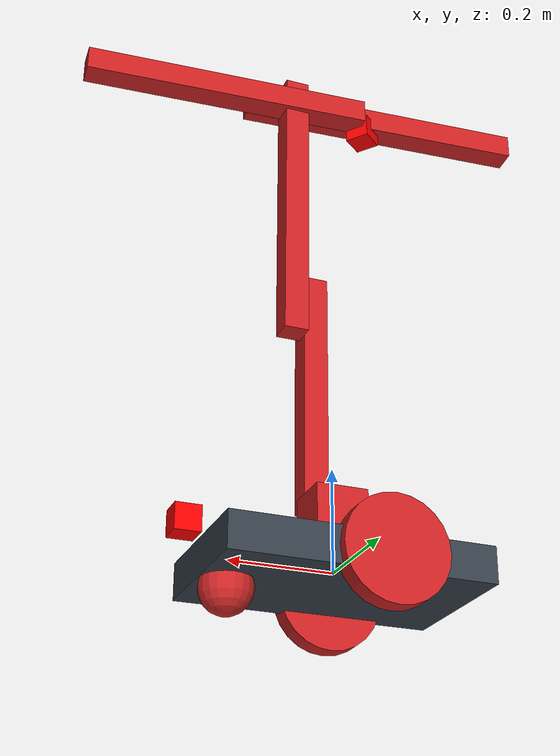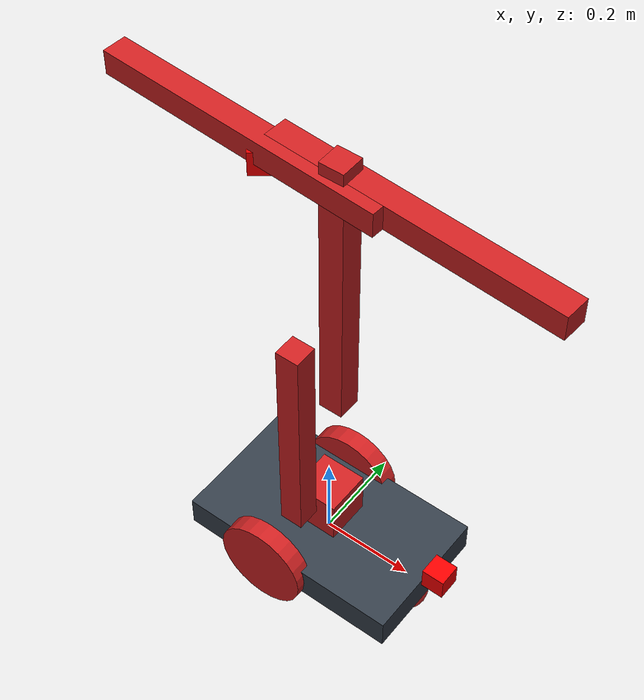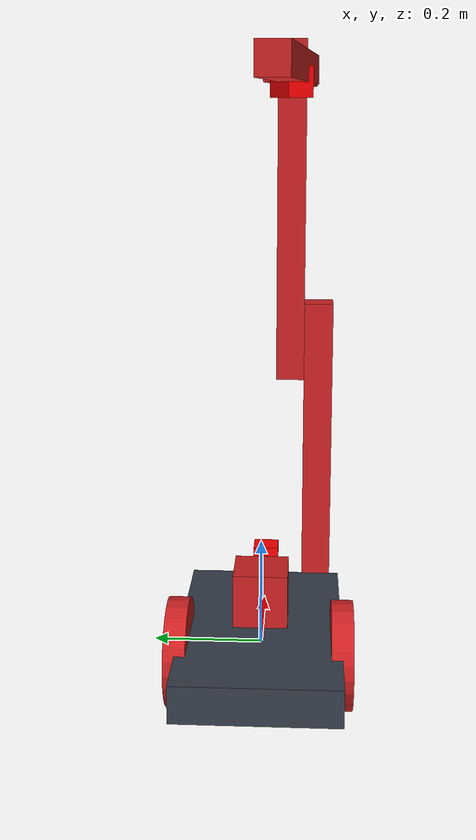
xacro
<?xml version="1.0"?>
<robot  xmlns:xacro="http://www.ros.org/wiki/xacro" name="robot4">
<xacro:include filename="$(find assignment2)/urdf/robot4.gazebo"/>

	<xacro:property name="length_wheel" value="0.04" />
	<xacro:property name="radius_wheel" value="0.1" />

	<xacro:macro name="default_inertial" params="mass">
               <inertial>
                       <mass value="${mass}" />
                       <origin rpy="0 1.5707 1.5707" xyz="0 0 0"/>
                       <inertia ixx="0.000526666666667" ixy="0" ixz="0" iyy="0.000526666666667" iyz="0" izz="0.001"/>
               </inertial>
	</xacro:macro>

    <xacro:macro name="wheel_geometry">
		<geometry>
       			<cylinder length="${length_wheel}" radius="${radius_wheel}"/>
     	</geometry>
	</xacro:macro>

  <material name="black">
    <color rgba="0.0 0.0 0.0 1.0"/>
  </material>
  <material name="blue">
    <color rgba="0.203125 0.23828125 0.28515625 1.0"/>
  </material>
  <material name="green">
    <color rgba="0.0 0.8 0.0 1.0"/>
  </material>
  <material name="grey">
    <color rgba="0.2 0.2 0.2 1.0"/>
  </material>
  <material name="orange">
    <color rgba="1.0 0.423529411765 0.0392156862745 1.0"/>
  </material>
  <material name="brown">
    <color rgba="0.870588235294 0.811764705882 0.764705882353 1.0"/>
  </material>
  <material name="red">
    <color rgba="0.80078125 0.12890625 0.1328125 1.0"/>
  </material>
  <material name="white">
    <color rgba="1.0 1.0 1.0 1.0"/>
  </material>

	  <link name="link_chassis">
    <!-- pose and inertial -->
    <pose>0 0 0.1 0 0 0</pose>
    <inertial>
      <mass value="5"/>
      <origin rpy="0 0 0" xyz="0 0 0.1"/>
      <inertia ixx="0.0395416666667" ixy="0" ixz="0" iyy="0.106208333333" iyz="0" izz="0.106208333333"/>
    </inertial>
    <!-- body -->
    <collision name="collision_chassis">
      <geometry>
        <box size="0.5 0.3 0.07"/>
      </geometry>
    </collision>
    <visual>
      <origin rpy="0 0 0" xyz="0 0 0"/>
      <geometry>
        <box size="0.5 0.3 0.07"/>
      </geometry>
      <material name="blue"/>
    </visual>
    <!-- caster front -->
    <collision name="caster_front_collision">
      <origin rpy=" 0 0 0" xyz="0.35 0 -0.05"/>
      <geometry>
        <sphere radius="0.05"/>
      </geometry>
    </collision>
    <visual name="caster_front_visual">
      <origin rpy=" 0 0 0" xyz="0.2 0 -0.05"/>
      <geometry>
        <sphere radius="0.05"/>
      </geometry>
    </visual>
  </link>

   <link name="link_right_wheel">
    <xacro:default_inertial mass="0.2"/>
    <collision name="link_right_wheel_collision">
      <origin rpy="0 1.5707 1.5707" xyz="0 0 0"/>
      <xacro:wheel_geometry />
    </collision>
    <visual name="link_right_wheel_visual">
      <origin rpy="0 1.5707 1.5707" xyz="0 0 0"/>
      <xacro:wheel_geometry />
      <material name="red"/>
    </visual>
  </link>

   <link name="link_left_wheel">
    <xacro:default_inertial mass="0.2"/>
    <collision name="link_left_wheel_collision">
      <origin rpy="0 1.5707 1.5707" xyz="0 0 0"/>
      <xacro:wheel_geometry />
    </collision>
    <visual name="link_left_wheel_visual">
      <origin rpy="0 1.5707 1.5707" xyz="0 0 0"/>
      <xacro:wheel_geometry />
      <material name="red"/>
    </visual>
  </link>

  <joint name="joint_right_wheel" type="continuous">
    <origin rpy="0 0 0" xyz="-0.05 0.15 0"/>
    <child link="link_right_wheel"/>
    <parent link="link_chassis"/>
    <axis rpy="0 0 0" xyz="0 1 0"/>
    <limit effort="10000" velocity="1000"/>
    <joint_properties damping="1.0" friction="1.0"/>
  </joint>

  <joint name="joint_left_wheel" type="continuous">
    <origin rpy="0 0 0" xyz="-0.05 -0.15 0"/>
    <child link="link_left_wheel"/>
    <parent link="link_chassis"/>
    <axis rpy="0 0 0" xyz="0 1 0"/>
    <limit effort="10000" velocity="1000"/>
    <joint_properties damping="1.0" friction="1.0"/>
  </joint>

 <link name="arm_base">
  	<inertial>
  		<mass value="1"/>
  		<origin xyz="0 0 0" rpy="0 0 0" />
  		<inertia ixx="0.0000416666667" ixy="0" ixz="0" iyy="0.0000416666667" iyz="0" izz="0.0000416666667"/>
  	</inertial>
  	<collision>
  	  <origin xyz="0 0 0.1" rpy="0 0 0"/>
      <geometry>
        <box size="0.1 0.1 0.1"/>
      </geometry>
  	</collision>
  	<visual>
  	 <origin xyz="0 0 0.1" rpy="0 0 0"/>
      <geometry>
        <box size="0.1 0.1 0.1"/>
      </geometry>
      <material name="red" />
  	</visual>
  </link>

  <joint name="base_to_arm_base" type="continuous">
                <limit effort="10000" velocity="1000"/>
                <joint_properties damping="1.0" friction="1.0"/>
		<parent link="link_chassis"/>
		<child link="arm_base"/>
		<axis xyz="0 0 1"/>
		<origin xyz="0 0 0"/>
  </joint>

  <link name="arm_1">
  	<inertial>
  		<mass value="0.1"/>
  		<origin xyz="0 0 0" rpy="0 0 0" />
  		<inertia ixx="0.000010279" ixy="0" ixz="0" iyy="0.000010279" iyz="0" izz="0.000007225"/>
  	</inertial>
  	<collision>
  	  <origin xyz="0 0 0.25" rpy="0 0 0"/>
      <geometry>
        <box size="0.05 0.05 0.5"/>
      </geometry>
  	</collision>
  	<visual>
  	  <origin xyz="0 0 0.25" rpy="0 0 0"/>
      <geometry>
       <box size="0.05 0.05 0.5"/>
      </geometry>
      <material name="red" />
  	</visual>
  </link>

  <joint name="arm_1_to_arm_base" type="revolute">
		<parent link="arm_base"/>
		<child link="arm_1"/>
		<axis xyz="0 1 0"/>
		<origin xyz="0 -0.1 0.15"/>
		<limit effort ="100.0" lower="-3.0" upper="3.0" velocity="0.5"/>
 </joint>

    <link name="arm_2">
  	<inertial>
  		<mass value="0.02"/>
  		<origin xyz="0 0 0" rpy="0 0 0" />
  		<inertia ixx="0.000010279" ixy="0" ixz="0" iyy="0.000010279" iyz="0" izz="0.000007225"/>
  	</inertial>
  	<collision>
  	  <origin xyz="0.06 0 0.15" rpy="0 0 0"/>
      <geometry>
        <box size="0.05 0.05 0.6"/>
      </geometry>
  	</collision>
  	<visual>
  	  <origin xyz="0.06 0 0.15" rpy="0 0 0"/>
      <geometry>
        <box size="0.05 0.05 0.6"/>
      </geometry>
      <material name="red" />
  	</visual>
  </link>

   <joint name="arm_2_to_arm_1" type="revolute">
		<parent link="arm_1"/>
		<child link="arm_2"/>
		<axis xyz="0 2 0"/>
		<origin xyz="0.0 0.05 0.50"/>
		<limit effort ="100.0" lower="-3.5" upper="3.5" velocity="0.5"/>
	</joint>

  <link name="arm_3">
  	<inertial>
  		<mass value="0.015"/>
  		<origin xyz="0 0 0" rpy="0 0 0" />
  		<inertia ixx="0.000010200" ixy="0" ixz="0" iyy="0.000010200" iyz="0" izz="0.000006225"/>
  	</inertial>
  	<collision>
  	  <origin xyz="0.06 0 0.15" rpy="0 0 1.5"/>
      <geometry>
        <box size="0.05 0.6 0.05"/>
      </geometry>
  	</collision>
  	<visual>
  	  <origin xyz="0.06 0 0.15" rpy="0 0 1.5"/>
      <geometry>
        <box size="0.05 0.6 0.05"/>
      </geometry>
      <material name="red" />
  	</visual>
  </link>

   <joint name="arm_3_to_arm_2" type="prismatic">
		<parent link="arm_2"/>
		<child link="arm_3"/>
		<axis xyz="2 0  0"/>
		<origin xyz="0.15 0  0.25"/>
		<limit effort ="100.0" lower="-3.5" upper="3.5" velocity="0.5"/>

</joint>
 <link name="arm_4">
  	<inertial>
  		<mass value="0.028"/>
  		<origin xyz="0 0 0" rpy="0 0 0" />
  		<inertia ixx="0.000010100" ixy="0" ixz="0" iyy="0.000010100" iyz="0" izz="0.000006225"/>
  	</inertial>
  	<collision>
  	  <origin xyz="0.06 0 0.15" rpy="0 0 1.5"/>
      <geometry>
        <box size="0.05 0.6 0.05"/>
      </geometry>
  	</collision>
  	<visual>
  	  <origin xyz="0.06 0 0.15" rpy="0 0 1.5"/>
      <geometry>
        <box size="0.05 0.6 0.05"/>
      </geometry>
      <material name="red" />
  	</visual>
  </link>

   <joint name="arm_4_to_arm_2" type="fixed">
		<parent link="arm_2"/>
		<child link="arm_4"/>
		<axis xyz="2 0  0"/>
		<origin xyz="-0.20 0  0.25"/>

</joint>

  <link name="camera_front3_link">
	    <collision>
	      <origin xyz="0 0 0.025" rpy="0 0 0"/>
	      <geometry>
		<box size="0.05 0.05 0.05"/>
	      </geometry>
	    </collision>
	    <visual>
	      <origin xyz="0 0 0.025" rpy="0 0 0"/>
	      <geometry>
		<box size="0.05 0.05 0.05"/>
	      </geometry>
	      <material name="red">
		<color rgba="1 0 0 1"/>
	      </material>
	    </visual>
	    <inertial>
	      <mass value="1e-5" />
	      <origin xyz="0 0 0" rpy="0 0 0"/>
	      <inertia ixx="1e-6" ixy="0" ixz="0" iyy="1e-6" iyz="0" izz="1e-6" />
	    </inertial>
  </link>

  <joint name="camera_front3_joint" type="fixed">
	    <axis xyz="0 1 0" />
	    <origin xyz="-0.25 0 0.1" rpy="0 0 3.8"/>
	    <parent link="arm_3"/>
	    <child link="camera_front3_link"/>
 </joint>

  <link name="hokuyo_link">
	    <collision>
	      <origin xyz="0 0 0.025" rpy="0 0 0"/>
	      <geometry>
		<box size="0.05 0.05 0.05"/>
	      </geometry>
	    </collision>
	    <visual>
	      <origin xyz="0 0 0.025" rpy="0 0 0"/>
	      <geometry>
		<box size="0.05 0.05 0.05"/>
	      </geometry>
	      <material name="red">
		<color rgba="1 0 0 1"/>
	      </material>
	    </visual>
	    <inertial>
	      <mass value="1e-5" />
	      <origin xyz="0 0 0" rpy="0 0 0"/>
	      <inertia ixx="1e-6" ixy="0" ixz="0" iyy="1e-6" iyz="0" izz="1e-6" />
	    </inertial>
 	 </link>

 	 <joint name="hokuyo_joint" type="fixed">
	    <axis xyz="0 1 0" />
	    <origin xyz="0.28 0 0.035" rpy="0 0 0"/>
	    <parent link="link_chassis"/>
	    <child link="hokuyo_link"/>
	 </joint>

<transmission name="base_to_arm_base_trans">
	<type>transmission_interface/SimpleTransmission</type>
	<joint name="base_to_arm_base">
		<hardwareInterface>hardware_interface/EffortJointInterface</hardwareInterface>
	</joint>
	<actuator name="motor3">
		<hardwareInterface>hardware_interface/EffortJointInterface</hardwareInterface>
		<mechanicalInterface>1</mechanicalInterface>
	</actuator>
</transmission>

<transmission name="arm_1_to_arm_base_trans">
	<type>transmission_interface/SimpleTransmission</type>
	<joint name="arm_1_to_arm_base">
		<hardwareInterface>hardware_interface/EffortJointInterface</hardwareInterface>
	</joint>
	<actuator name="motor1">
		<hardwareInterface>hardware_interface/EffortJointInterface</hardwareInterface>
		<mechanicalInterface>1</mechanicalInterface>
	</actuator>
</transmission>

<transmission name="arm_2_to_arm_1_trans">
	<type>transmission_interface/SimpleTransmission</type>
	<joint name="arm_2_to_arm_1">
		<hardwareInterface>hardware_interface/EffortJointInterface</hardwareInterface>
	</joint>
	<actuator name="motor2">
		<hardwareInterface>hardware_interface/EffortJointInterface</hardwareInterface>
		<mechanicalInterface>1</mechanicalInterface>
	</actuator>
</transmission>

<transmission name="arm_3_to_arm_2_trans">
	<type>transmission_interface/SimpleTransmission</type>
	<joint name="arm_3_to_arm_2">
		<hardwareInterface>hardware_interface/EffortJointInterface</hardwareInterface>
	</joint>
	<actuator name="motor4">
		<hardwareInterface>hardware_interface/EffortJointInterface</hardwareInterface>
		<mechanicalInterface>1</mechanicalInterface>
	</actuator>
</transmission>

</robot>
